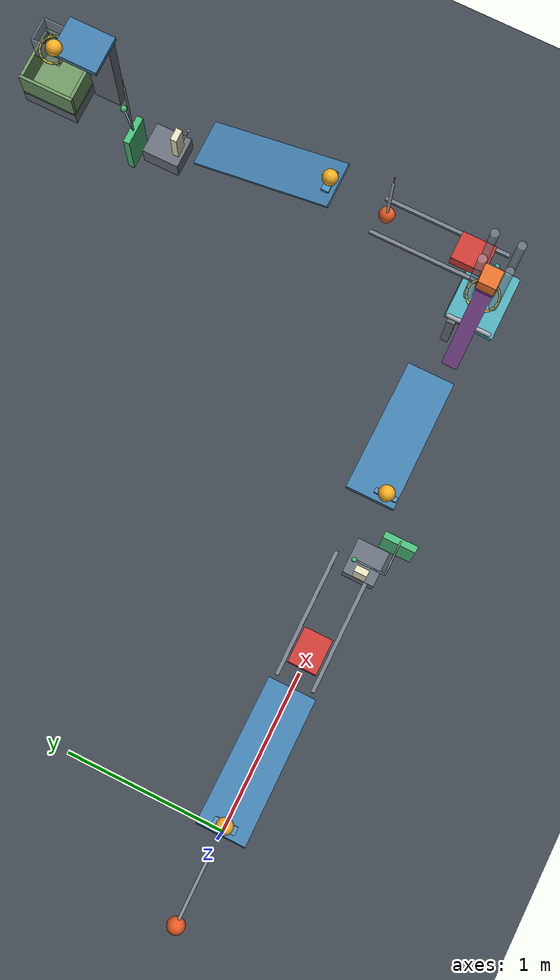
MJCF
<mujoco model="chain_revision_with_explicit_018m_ring1">
  <compiler angle="degree" autolimits="true"/>
  <option timestep="0.002" gravity="0 0 -9.81" integrator="implicitfast" solver="Newton" iterations="100" tolerance="1e-10"/>
  <size nconmax="1500" njmax="6000"/>
  <visual>
    <global azimuth="90" elevation="-22"/>
    <map znear="0.01" zfar="30"/>
    <quality shadowsize="2048"/>
  </visual>

  <worldbody>
    <light name="main_light" pos="2 -3 6" dir="0 0.4 -1" diffuse="0.85 0.85 0.85"/>
    <light name="fill_light" pos="3 4 5" dir="0 -0.4 -1" diffuse="0.45 0.45 0.45"/>
    <camera name="overview" pos="2.3 -6 4" xyaxes="1 0 0 0 0.447 0.894"/>
    <geom name="floor" type="plane" size="10 8 0.1" rgba="0.24 0.27 0.30 1" friction="0.68 0.005 0.0001" solref="0.008 0.6901" solimp="0.95 0.99 0.001"/>

    <!-- Spring anchors are fixed; no timed controls or external actions are used. -->
    <site name="seesaw1_spring_anchor" pos="3.282016 0 0.498140" size="0.004" rgba="0.8 0.3 0.3 1"/>
    <site name="door1_spring_anchor" pos="3.20 0 0.1211" size="0.004" rgba="0.8 0.3 0.3 1"/>
    <site name="pendulum2_spring_anchor" pos="3.65 0.725 0.95" size="0.004" rgba="0.8 0.3 0.3 1"/>
    <site name="flap2_spring_anchor" pos="3.41 2.293242 1.18" size="0.004" rgba="0.8 0.3 0.3 1"/>

    <body name="pendulum1" pos="-0.045901 0 1.07" euler="0 55 0">
      <joint name="pendulum1_hinge" type="hinge" axis="0 -1 0" damping="0.04" range="0 135"/>
      <geom name="pendulum1_rod" type="capsule" fromto="0 0 0 0 0 -0.55" size="0.009" mass="0.04" rgba="0.65 0.68 0.72 1" friction="0.68 0.005 0.0001" solref="0.008 0.6901"/>
      <geom name="pendulum1_bob" type="sphere" pos="0 0 -0.55" size="0.05" mass="0.36" rgba="0.90 0.35 0.12 1" friction="0.68 0.005 0.0001" solref="0.008 0.6901"/>
    </body>

    <body name="ball1" pos="0.054099 0 0.52">
      <freejoint name="ball1_free"/>
      <geom name="ball1_geom" type="sphere" size="0.05" mass="0.20" rgba="0.96 0.68 0.12 1" friction="0.68 0.005 0.0001" solref="0.008 0.6901"/>
    </body>

    <body name="ramp1" pos="0 0 0">
      <geom name="ramp1_surface" type="box" pos="0.445865 0 0.295190" euler="0 19 0" size="0.475 0.15 0.01" rgba="0.25 0.48 0.66 1" friction="0.68 0.005 0.0001" solref="0.008 0.6901"/>
      <geom name="ramp1_parking_ledge" type="box" pos="0.054099 0 0.455" size="0.025 0.07 0.015" rgba="0.30 0.55 0.72 1" friction="0.68 0.005 0.0001" solref="0.008 0.6901"/>
    </body>

    <body name="cart1" pos="1.128242 0 0.20">
      <joint name="cart1_slide" type="slide" axis="1 0 0" damping="0.20" range="0 0.40" solreflimit="0.004 1"/>
      <geom name="cart1_geom" type="box" size="0.11 0.09 0.05" mass="0.50" rgba="0.78 0.22 0.20 1" friction="0.68 0.005 0.0001" solref="0.008 0.6901"/>
    </body>

    <body name="cart1_guide" pos="1.328242 0 0.13">
      <geom name="cart1_guide_left" type="box" pos="0 -0.115 0" size="0.40 0.012 0.012" contype="0" conaffinity="0" rgba="0.45 0.48 0.52 1"/>
      <geom name="cart1_guide_right" type="box" pos="0 0.115 0" size="0.40 0.012 0.012" contype="0" conaffinity="0" rgba="0.45 0.48 0.52 1"/>
    </body>

    <body name="domino1" pos="1.653242 -0.065 0.27">
      <freejoint name="domino1_free"/>
      <geom name="domino1_geom" type="box" size="0.02 0.04 0.12" mass="0.25" rgba="0.88 0.86 0.72 1" friction="0.68 0.005 0.0001" solref="0.008 0.6901"/>
    </body>

    <body name="domino1_support" pos="1.741242 -0.065 0.075">
      <geom name="domino1_support_geom" type="box" size="0.11 0.10 0.075" rgba="0.40 0.43 0.47 1" friction="0.68 0.005 0.0001" solref="0.008 0.6901"/>
    </body>

    <body name="flap1" pos="1.873242 -0.19 0.15">
      <joint name="flap1_hinge" type="hinge" axis="0 1 0" damping="0.04" frictionloss="0.02" range="0 65" solreflimit="0.004 1"/>
      <geom name="flap1_panel" type="box" pos="0 0 0.20" size="0.02 0.10 0.20" mass="0.27" rgba="0.28 0.72 0.46 1" friction="0.68 0.005 0.0001" solref="0.008 0.6901"/>
      <geom name="flap1_striker_bracket" type="capsule" fromto="0 0 0.40 -0.201519 0 0.382129" size="0.005" mass="0.0125" rgba="0.50 0.55 0.58 1" friction="0.68 0.005 0.0001" solref="0.008 0.6901"/>
      <geom name="flap1_striker_connector" type="capsule" fromto="-0.201519 0 0.382129 -0.201519 0.19 0.382129" size="0.005" mass="0.0125" rgba="0.50 0.55 0.58 1" friction="0.68 0.005 0.0001" solref="0.008 0.6901"/>
      <geom name="flap1_striker_tip" type="sphere" pos="-0.201519 0.19 0.382129" size="0.015" mass="0.005" rgba="0.28 0.72 0.46 1" friction="0.68 0.005 0.0001" solref="0.008 0.6901"/>
    </body>

    <body name="ball2" pos="2.094099 0 0.52">
      <freejoint name="ball2_free"/>
      <geom name="ball2_geom" type="sphere" size="0.05" mass="0.20" rgba="0.96 0.68 0.12 1" friction="0.68 0.005 0.0001" solref="0.008 0.6901"/>
    </body>

    <body name="ramp2" pos="0 0 0">
      <geom name="ramp2_surface" type="box" pos="2.485865 0.075 0.295190" euler="0 19 0" size="0.475 0.15 0.01" rgba="0.25 0.48 0.66 1" friction="0.68 0.005 0.0001" solref="0.008 0.6901"/>
      <geom name="ramp2_parking_ledge" type="box" pos="2.094099 0 0.455" size="0.015 0.07 0.015" rgba="0.30 0.55 0.72 1" friction="0.68 0.005 0.0001" solref="0.008 0.6901"/>
    </body>

    <body name="seesaw1" pos="3.224658 0 0.416225" euler="0 -55 0">
      <joint name="seesaw1_hinge" type="hinge" axis="0 -1 0" damping="0.04" range="0 40" solreflimit="0.004 1"/>
      <geom name="seesaw1_beam" type="box" size="0.325 0.05 0.02" mass="0.52" rgba="0.62 0.37 0.72 1" friction="0.68 0.005 0.0001" solref="0.008 0.6901"/>
      <geom name="seesaw1_end_pad" type="box" pos="0.333192 0 0.005736" euler="0 55 0" size="0.065 0.055 0.01" mass="0.03" rgba="0.62 0.37 0.72 1" friction="0.68 0.005 0.0001" solref="0.008 0.6901"/>
      <site name="seesaw1_spring_site" pos="-0.325 0 0" size="0.004" rgba="0.8 0.3 0.3 1"/>
    </body>

    <body name="seesaw1_support" pos="3.224658 0 0.19">
      <geom name="seesaw1_support_post" type="box" pos="0 0.10 0" size="0.025 0.025 0.19" rgba="0.40 0.43 0.47 1" friction="0.68 0.005 0.0001" solref="0.008 0.6901"/>
      <geom name="seesaw1_support_axle" type="capsule" fromto="0 -0.13 0.226225 0 0.13 0.226225" size="0.014" contype="0" conaffinity="0" rgba="0.65 0.68 0.72 1"/>
    </body>

    <!-- Initial carrying contact is intentional. -->
    <body name="block1" pos="3.411073 0 0.762449">
      <freejoint name="block1_free"/>
      <geom name="block1_geom" type="box" size="0.06 0.06 0.06" mass="0.35" rgba="0.88 0.43 0.16 1" friction="0.68 0.005 0.0001" solref="0.008 0.6901"/>
    </body>

    <!-- Corner rails constrain lateral launch motion without enclosing the beam's lane. -->
    <body name="block1_guide" pos="3.411073 0 0.92">
      <geom name="block1_guide_front_left" type="cylinder" pos="-0.08 -0.08 0" size="0.025 0.33" rgba="0.55 0.60 0.66 0.55" friction="0.68 0.005 0.0001" solref="0.008 0.6901"/>
      <geom name="block1_guide_front_right" type="cylinder" pos="0.08 -0.08 0" size="0.025 0.33" rgba="0.55 0.60 0.66 0.55" friction="0.68 0.005 0.0001" solref="0.008 0.6901"/>
      <geom name="block1_guide_back_left" type="cylinder" pos="-0.08 0.08 0" size="0.025 0.33" rgba="0.55 0.60 0.66 0.55" friction="0.68 0.005 0.0001" solref="0.008 0.6901"/>
      <geom name="block1_guide_back_right" type="cylinder" pos="0.08 0.08 0" size="0.025 0.33" rgba="0.55 0.60 0.66 0.55" friction="0.68 0.005 0.0001" solref="0.008 0.6901"/>
    </body>

    <!-- EXPLICIT DEVIATION: ring1 has 0.18 m minimum clear diameter, not 0.16 m. -->
    <!-- Its center is directly 0.30 m below block1's initial center. -->
    <body name="ring1" pos="3.411073 0 0.462449">
      <geom name="ring1_segment00" type="capsule" fromto="0.098902 0 0 0.091375 0.037849 0" size="0.007" rgba="0.85 0.76 0.22 1" friction="0.68 0.005 0.0001" solref="0.008 0.6901"/>
      <geom name="ring1_segment01" type="capsule" fromto="0.091375 0.037849 0 0.069934 0.069934 0" size="0.007" rgba="0.85 0.76 0.22 1" friction="0.68 0.005 0.0001" solref="0.008 0.6901"/>
      <geom name="ring1_segment02" type="capsule" fromto="0.069934 0.069934 0 0.037849 0.091375 0" size="0.007" rgba="0.85 0.76 0.22 1" friction="0.68 0.005 0.0001" solref="0.008 0.6901"/>
      <geom name="ring1_segment03" type="capsule" fromto="0.037849 0.091375 0 0 0.098902 0" size="0.007" rgba="0.85 0.76 0.22 1" friction="0.68 0.005 0.0001" solref="0.008 0.6901"/>
      <geom name="ring1_segment04" type="capsule" fromto="0 0.098902 0 -0.037849 0.091375 0" size="0.007" rgba="0.85 0.76 0.22 1" friction="0.68 0.005 0.0001" solref="0.008 0.6901"/>
      <geom name="ring1_segment05" type="capsule" fromto="-0.037849 0.091375 0 -0.069934 0.069934 0" size="0.007" rgba="0.85 0.76 0.22 1" friction="0.68 0.005 0.0001" solref="0.008 0.6901"/>
      <geom name="ring1_segment06" type="capsule" fromto="-0.069934 0.069934 0 -0.091375 0.037849 0" size="0.007" rgba="0.85 0.76 0.22 1" friction="0.68 0.005 0.0001" solref="0.008 0.6901"/>
      <geom name="ring1_segment07" type="capsule" fromto="-0.091375 0.037849 0 -0.098902 0 0" size="0.007" rgba="0.85 0.76 0.22 1" friction="0.68 0.005 0.0001" solref="0.008 0.6901"/>
      <geom name="ring1_segment08" type="capsule" fromto="-0.098902 0 0 -0.091375 -0.037849 0" size="0.007" rgba="0.85 0.76 0.22 1" friction="0.68 0.005 0.0001" solref="0.008 0.6901"/>
      <geom name="ring1_segment09" type="capsule" fromto="-0.091375 -0.037849 0 -0.069934 -0.069934 0" size="0.007" rgba="0.85 0.76 0.22 1" friction="0.68 0.005 0.0001" solref="0.008 0.6901"/>
      <geom name="ring1_segment10" type="capsule" fromto="-0.069934 -0.069934 0 -0.037849 -0.091375 0" size="0.007" rgba="0.85 0.76 0.22 1" friction="0.68 0.005 0.0001" solref="0.008 0.6901"/>
      <geom name="ring1_segment11" type="capsule" fromto="-0.037849 -0.091375 0 0 -0.098902 0" size="0.007" rgba="0.85 0.76 0.22 1" friction="0.68 0.005 0.0001" solref="0.008 0.6901"/>
      <geom name="ring1_segment12" type="capsule" fromto="0 -0.098902 0 0.037849 -0.091375 0" size="0.007" rgba="0.85 0.76 0.22 1" friction="0.68 0.005 0.0001" solref="0.008 0.6901"/>
      <geom name="ring1_segment13" type="capsule" fromto="0.037849 -0.091375 0 0.069934 -0.069934 0" size="0.007" rgba="0.85 0.76 0.22 1" friction="0.68 0.005 0.0001" solref="0.008 0.6901"/>
      <geom name="ring1_segment14" type="capsule" fromto="0.069934 -0.069934 0 0.091375 -0.037849 0" size="0.007" rgba="0.85 0.76 0.22 1" friction="0.68 0.005 0.0001" solref="0.008 0.6901"/>
      <geom name="ring1_segment15" type="capsule" fromto="0.091375 -0.037849 0 0.098902 0 0" size="0.007" rgba="0.85 0.76 0.22 1" friction="0.68 0.005 0.0001" solref="0.008 0.6901"/>
    </body>

    <!-- A shallow pitched panel converts a falling block's impulse into hinge torque. -->
    <!-- The vertical hinge permits the complete 70-degree sweep above the floor. -->
    <body name="door1" pos="3.30 0 0">
      <joint name="door1_hinge" type="hinge" axis="0 0 1" damping="0.04" frictionloss="0.02" range="0 70" solreflimit="0.004 1"/>
      <geom name="door1_panel" type="box" pos="0.21 0 0.1211" euler="10 0 0" size="0.21 0.16 0.02" mass="0.44" rgba="0.30 0.66 0.71 1" friction="0.68 0.005 0.0001" solref="0.008 0.6901"/>
      <geom name="door1_striker_arm" type="capsule" fromto="0 0 0.025 0.35 0 0.35" size="0.006" mass="0.009" rgba="0.50 0.55 0.58 1" friction="0.68 0.005 0.0001" solref="0.008 0.6901"/>
      <geom name="door1_striker_tip" type="sphere" pos="0.35 0 0.35" size="0.015" mass="0.001" rgba="0.30 0.66 0.71 1" friction="0.68 0.005 0.0001" solref="0.008 0.6901"/>
      <site name="door1_spring_site" pos="0.20 0 0.1211" size="0.004" rgba="0.8 0.3 0.3 1"/>
    </body>

    <body name="cart2" pos="3.65 0.16 0.35">
      <joint name="cart2_slide" type="slide" axis="0 1 0" damping="0.20" range="0 0.42" solreflimit="0.004 1"/>
      <geom name="cart2_geom" type="box" size="0.09 0.11 0.05" mass="0.50" rgba="0.78 0.22 0.20 1" friction="0.68 0.005 0.0001" solref="0.008 0.6901"/>
    </body>

    <body name="cart2_guide" pos="3.65 0.37 0.28">
      <geom name="cart2_guide_left" type="box" pos="-0.115 0 0" size="0.012 0.41 0.012" contype="0" conaffinity="0" rgba="0.45 0.48 0.52 1"/>
      <geom name="cart2_guide_right" type="box" pos="0.115 0 0" size="0.012 0.41 0.012" contype="0" conaffinity="0" rgba="0.45 0.48 0.52 1"/>
    </body>

    <body name="pendulum2" pos="3.65 0.725 0.85">
      <joint name="pendulum2_hinge" type="hinge" axis="1 0 0" damping="0.04" frictionloss="0.015" range="0 38" solreflimit="0.004 1"/>
      <geom name="pendulum2_rod" type="capsule" fromto="0 0 0 0 0 -0.50" size="0.009" mass="0.035" rgba="0.65 0.68 0.72 1" friction="0.68 0.005 0.0001" solref="0.008 0.6901"/>
      <geom name="pendulum2_bob" type="sphere" pos="0 0 -0.50" size="0.05" mass="0.315" rgba="0.90 0.35 0.12 1" friction="0.68 0.005 0.0001" solref="0.008 0.6901"/>
      <site name="pendulum2_spring_site" pos="0 0 -0.50" size="0.004" rgba="0.8 0.3 0.3 1"/>
    </body>

    <body name="ball3" pos="3.65 1.109099 0.52">
      <freejoint name="ball3_free"/>
      <geom name="ball3_geom" type="sphere" size="0.05" mass="0.20" rgba="0.96 0.68 0.12 1" friction="0.68 0.005 0.0001" solref="0.008 0.6901"/>
    </body>

    <body name="ramp3" pos="0 0 0">
      <geom name="ramp3_surface" type="box" pos="3.65 1.500865 0.295190" euler="-19 0 0" size="0.15 0.475 0.01" rgba="0.25 0.48 0.66 1" friction="0.68 0.005 0.0001" solref="0.008 0.6901"/>
      <geom name="ramp3_parking_ledge" type="box" pos="3.65 1.109099 0.455" size="0.07 0.025 0.015" rgba="0.30 0.55 0.72 1" friction="0.68 0.005 0.0001" solref="0.008 0.6901"/>
    </body>

    <!-- The small rigid receiver places domino2's impact face in ball3's lane. -->
    <body name="domino2" pos="3.53 2.073242 0.27">
      <freejoint name="domino2_free"/>
      <geom name="domino2_geom" type="box" size="0.04 0.02 0.12" mass="0.245" rgba="0.88 0.86 0.72 1" friction="0.68 0.005 0.0001" solref="0.008 0.6901"/>
      <geom name="domino2_receiver_arm" type="capsule" fromto="0 -0.012 -0.06 0.12 -0.012 -0.06" size="0.004" mass="0.004" rgba="0.65 0.68 0.72 1" friction="0.68 0.005 0.0001" solref="0.008 0.6901"/>
      <geom name="domino2_receiver_tip" type="sphere" pos="0.12 -0.012 -0.06" size="0.008" mass="0.001" rgba="0.88 0.86 0.72 1" friction="0.68 0.005 0.0001" solref="0.008 0.6901"/>
    </body>

    <body name="domino2_support" pos="3.53 2.151242 0.075">
      <geom name="domino2_support_geom" type="box" size="0.10 0.12 0.075" rgba="0.40 0.43 0.47 1" friction="0.68 0.005 0.0001" solref="0.008 0.6901"/>
    </body>

    <!-- Flap2 sweeps beside the shelf rather than through its underside. -->
    <body name="flap2" pos="3.41 2.293242 1.08">
      <joint name="flap2_hinge" type="hinge" axis="1 0 0" damping="0.04" frictionloss="0.02" range="0 60" solreflimit="0.004 1"/>
      <geom name="flap2_arm" type="capsule" fromto="0 0 0 0 0 -0.59" size="0.006" mass="0.02" rgba="0.50 0.55 0.58 1" friction="0.68 0.005 0.0001" solref="0.008 0.6901"/>
      <geom name="flap2_panel" type="box" pos="0 0 -0.78" size="0.09 0.02 0.19" mass="0.245" rgba="0.28 0.72 0.46 1" friction="0.68 0.005 0.0001" solref="0.008 0.6901"/>
      <geom name="flap2_striker_bracket" type="capsule" fromto="0 0 -0.59 0.08 0.10 -0.55" size="0.006" mass="0.01" rgba="0.50 0.55 0.58 1" friction="0.68 0.005 0.0001" solref="0.008 0.6901"/>
      <geom name="flap2_striker_tip" type="sphere" pos="0.08 0.10 -0.55" size="0.02" mass="0.005" rgba="0.28 0.72 0.46 1" friction="0.68 0.005 0.0001" solref="0.008 0.6901"/>
      <site name="flap2_spring_site" pos="0 0 -0.78" size="0.004" rgba="0.8 0.3 0.3 1"/>
    </body>

    <body name="ball4" pos="3.54 2.843242 0.83">
      <freejoint name="ball4_free"/>
      <geom name="ball4_geom" type="sphere" size="0.05" mass="0.20" rgba="0.96 0.68 0.12 1" friction="0.68 0.005 0.0001" solref="0.008 0.6901"/>
    </body>

    <body name="shelf1" pos="3.65 2.718242 0.76">
      <geom name="shelf1_surface" type="box" size="0.125 0.15 0.02" rgba="0.25 0.48 0.66 1" friction="0.68 0.005 0.0001" solref="0.008 0.6901"/>
    </body>

    <body name="shelf1_support" pos="3.72 2.66 0.37">
      <geom name="shelf1_support_post" type="box" size="0.035 0.09 0.37" rgba="0.40 0.43 0.47 1" friction="0.68 0.005 0.0001" solref="0.008 0.6901"/>
    </body>

    <!-- Ring2 retains approximately 0.16 m minimum clear diameter. -->
    <!-- Short inlet walls limit lateral motion before the ball reaches the opening. -->
    <body name="ring2" pos="3.64 2.94 0.53">
      <geom name="ring2_segment00" type="capsule" fromto="0.088704 0 0 0.081951 0.033945 0" size="0.007" rgba="0.85 0.76 0.22 1" friction="0.68 0.005 0.0001" solref="0.008 0.6901"/>
      <geom name="ring2_segment01" type="capsule" fromto="0.081951 0.033945 0 0.062723 0.062723 0" size="0.007" rgba="0.85 0.76 0.22 1" friction="0.68 0.005 0.0001" solref="0.008 0.6901"/>
      <geom name="ring2_segment02" type="capsule" fromto="0.062723 0.062723 0 0.033945 0.081951 0" size="0.007" rgba="0.85 0.76 0.22 1" friction="0.68 0.005 0.0001" solref="0.008 0.6901"/>
      <geom name="ring2_segment03" type="capsule" fromto="0.033945 0.081951 0 0 0.088704 0" size="0.007" rgba="0.85 0.76 0.22 1" friction="0.68 0.005 0.0001" solref="0.008 0.6901"/>
      <geom name="ring2_segment04" type="capsule" fromto="0 0.088704 0 -0.033945 0.081951 0" size="0.007" rgba="0.85 0.76 0.22 1" friction="0.68 0.005 0.0001" solref="0.008 0.6901"/>
      <geom name="ring2_segment05" type="capsule" fromto="-0.033945 0.081951 0 -0.062723 0.062723 0" size="0.007" rgba="0.85 0.76 0.22 1" friction="0.68 0.005 0.0001" solref="0.008 0.6901"/>
      <geom name="ring2_segment06" type="capsule" fromto="-0.062723 0.062723 0 -0.081951 0.033945 0" size="0.007" rgba="0.85 0.76 0.22 1" friction="0.68 0.005 0.0001" solref="0.008 0.6901"/>
      <geom name="ring2_segment07" type="capsule" fromto="-0.081951 0.033945 0 -0.088704 0 0" size="0.007" rgba="0.85 0.76 0.22 1" friction="0.68 0.005 0.0001" solref="0.008 0.6901"/>
      <geom name="ring2_segment08" type="capsule" fromto="-0.088704 0 0 -0.081951 -0.033945 0" size="0.007" rgba="0.85 0.76 0.22 1" friction="0.68 0.005 0.0001" solref="0.008 0.6901"/>
      <geom name="ring2_segment09" type="capsule" fromto="-0.081951 -0.033945 0 -0.062723 -0.062723 0" size="0.007" rgba="0.85 0.76 0.22 1" friction="0.68 0.005 0.0001" solref="0.008 0.6901"/>
      <geom name="ring2_segment10" type="capsule" fromto="-0.062723 -0.062723 0 -0.033945 -0.081951 0" size="0.007" rgba="0.85 0.76 0.22 1" friction="0.68 0.005 0.0001" solref="0.008 0.6901"/>
      <geom name="ring2_segment11" type="capsule" fromto="-0.033945 -0.081951 0 0 -0.088704 0" size="0.007" rgba="0.85 0.76 0.22 1" friction="0.68 0.005 0.0001" solref="0.008 0.6901"/>
      <geom name="ring2_segment12" type="capsule" fromto="0 -0.088704 0 0.033945 -0.081951 0" size="0.007" rgba="0.85 0.76 0.22 1" friction="0.68 0.005 0.0001" solref="0.008 0.6901"/>
      <geom name="ring2_segment13" type="capsule" fromto="0.033945 -0.081951 0 0.062723 -0.062723 0" size="0.007" rgba="0.85 0.76 0.22 1" friction="0.68 0.005 0.0001" solref="0.008 0.6901"/>
      <geom name="ring2_segment14" type="capsule" fromto="0.062723 -0.062723 0 0.081951 -0.033945 0" size="0.007" rgba="0.85 0.76 0.22 1" friction="0.68 0.005 0.0001" solref="0.008 0.6901"/>
      <geom name="ring2_segment15" type="capsule" fromto="0.081951 -0.033945 0 0.088704 0 0" size="0.007" rgba="0.85 0.76 0.22 1" friction="0.68 0.005 0.0001" solref="0.008 0.6901"/>
      <geom name="ring2_inlet_left" type="box" pos="-0.075 0 0.105" size="0.005 0.08 0.105" rgba="0.55 0.60 0.66 0.55" friction="0.68 0.005 0.0001" solref="0.008 0.6901"/>
      <geom name="ring2_inlet_right" type="box" pos="0.075 0 0.105" size="0.005 0.08 0.105" rgba="0.55 0.60 0.66 0.55" friction="0.68 0.005 0.0001" solref="0.008 0.6901"/>
      <geom name="ring2_inlet_front" type="box" pos="0 -0.075 0.105" size="0.07 0.005 0.105" rgba="0.55 0.60 0.66 0.55" friction="0.68 0.005 0.0001" solref="0.008 0.6901"/>
      <geom name="ring2_inlet_back" type="box" pos="0 0.075 0.105" size="0.07 0.005 0.105" rgba="0.55 0.60 0.66 0.55" friction="0.68 0.005 0.0001" solref="0.008 0.6901"/>
    </body>

    <body name="box1" pos="3.64 2.94 0.11">
      <geom name="box1_bottom" type="box" pos="0 0 0.01" size="0.18 0.18 0.01" rgba="0.42 0.57 0.38 1" friction="0.68 0.005 0.0001" solref="0.008 0.6901"/>
      <geom name="box1_wall_left" type="box" pos="-0.17 0 0.12" size="0.01 0.18 0.10" rgba="0.42 0.57 0.38 1" friction="0.68 0.005 0.0001" solref="0.008 0.6901"/>
      <geom name="box1_wall_right" type="box" pos="0.17 0 0.12" size="0.01 0.18 0.10" rgba="0.42 0.57 0.38 1" friction="0.68 0.005 0.0001" solref="0.008 0.6901"/>
      <geom name="box1_wall_front" type="box" pos="0 -0.17 0.12" size="0.16 0.01 0.10" rgba="0.42 0.57 0.38 1" friction="0.68 0.005 0.0001" solref="0.008 0.6901"/>
      <geom name="box1_wall_back" type="box" pos="0 0.17 0.12" size="0.16 0.01 0.10" rgba="0.42 0.57 0.38 1" friction="0.68 0.005 0.0001" solref="0.008 0.6901"/>
    </body>

    <body name="box1_support" pos="3.64 2.94 0.055">
      <geom name="box1_support_geom" type="box" size="0.18 0.18 0.055" rgba="0.40 0.43 0.47 1" friction="0.68 0.005 0.0001" solref="0.008 0.6901"/>
    </body>
  </worldbody>

  <!-- These preloaded springs have zero hinge torque in their aligned initial poses. -->
  <!-- Impacts move their attachment points off alignment and release stored energy. -->
  <tendon>
    <spatial name="seesaw1_launch_spring" stiffness="120" damping="0.02" springlength="0.10" width="0.002" rgba="0.8 0.3 0.3 1">
      <site site="seesaw1_spring_anchor"/>
      <site site="seesaw1_spring_site"/>
    </spatial>
    <spatial name="door1_drive_spring" stiffness="400" damping="0.02" springlength="0.10" width="0.002" rgba="0.8 0.3 0.3 1">
      <site site="door1_spring_anchor"/>
      <site site="door1_spring_site"/>
    </spatial>
    <spatial name="pendulum2_drive_spring" stiffness="80" damping="0.02" springlength="0.10" width="0.002" rgba="0.8 0.3 0.3 1">
      <site site="pendulum2_spring_anchor"/>
      <site site="pendulum2_spring_site"/>
    </spatial>
    <spatial name="flap2_drive_spring" stiffness="120" damping="0.02" springlength="0.10" width="0.002" rgba="0.8 0.3 0.3 1">
      <site site="flap2_spring_anchor"/>
      <site site="flap2_spring_site"/>
    </spatial>
  </tendon>

  <actuator>
    <motor name="flap1_assist" joint="flap1_hinge" gear="1" ctrllimited="true" ctrlrange="0 0.055"/>
    <motor name="seesaw1_assist" joint="seesaw1_hinge" gear="1" ctrllimited="true" ctrlrange="0 0.68"/>
  </actuator>

  <!-- Omitted qvel is identically zero; controls remain constant throughout the run. -->
  <keyframe>
    <key name="start" time="0" ctrl="0.055 0.68"/>
  </keyframe>
</mujoco>
